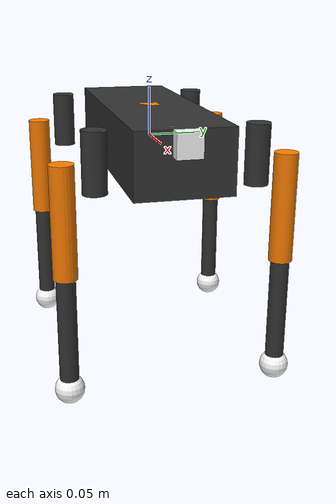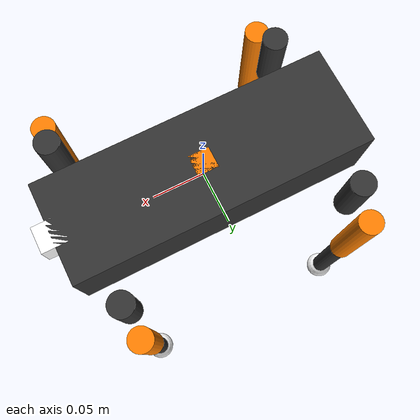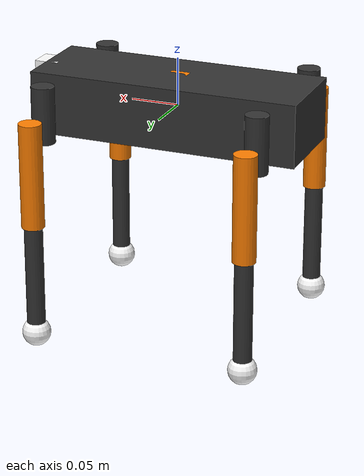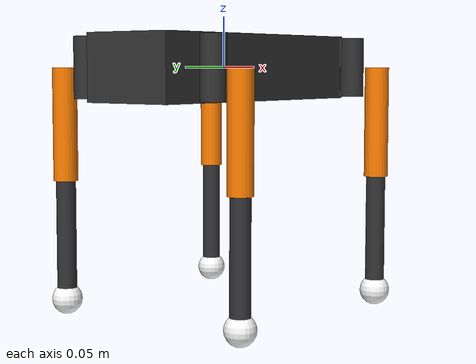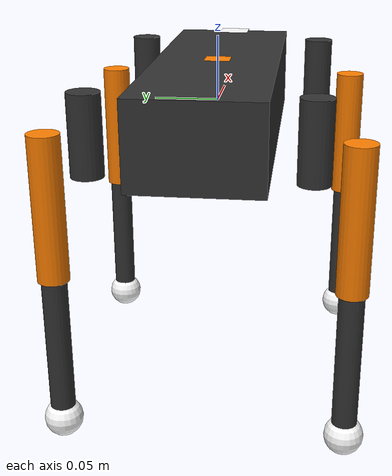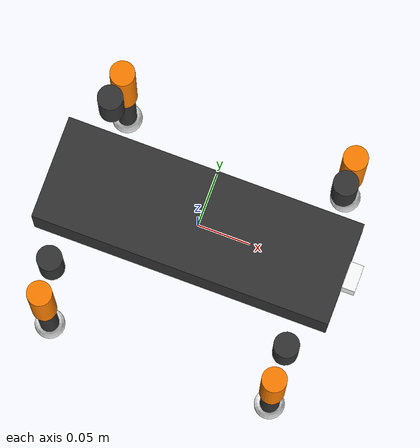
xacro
<?xml version="1.0"?>
<robot name="spotbot" xmlns:xacro="http://www.ros.org/wiki/xacro">

  <!-- ===== Proprietes ===== -->
  <xacro:property name="body_length"  value="0.285"/>
  <xacro:property name="body_width"   value="0.097"/>
  <xacro:property name="body_height"  value="0.065"/>
  <xacro:property name="leg_radius"   value="0.012"/>
  <xacro:property name="abad_length"  value="0.060"/>
  <xacro:property name="upper_length" value="0.111"/>
  <xacro:property name="lower_length" value="0.118"/>
  <xacro:property name="mass_body"    value="1.000"/>
  <xacro:property name="mass_leg"     value="0.100"/>

  <!-- ===== Materiaux ===== -->
  <material name="dark_grey"><color rgba="0.2 0.2 0.2 1"/></material>
  <material name="orange">   <color rgba="1.0 0.5 0.0 1"/></material>
  <material name="white">    <color rgba="1.0 1.0 1.0 1"/></material>

  <!-- ===== Corps principal ===== -->
  <link name="base_link">
    <visual>
      <geometry>
        <box size="${body_length} ${body_width} ${body_height}"/>
      </geometry>
      <material name="dark_grey"/>
    </visual>
    <collision>
      <geometry>
        <box size="${body_length} ${body_width} ${body_height}"/>
      </geometry>
    </collision>
    <inertial>
      <mass value="${mass_body}"/>
      <inertia ixx="0.005" ixy="0" ixz="0" iyy="0.010" iyz="0" izz="0.012"/>
    </inertial>
  </link>

  <!-- ===== IMU Link ===== -->
  <link name="imu_link">
    <visual>
      <geometry><box size="0.02 0.02 0.005"/></geometry>
      <material name="orange"/>
    </visual>
    <inertial>
      <mass value="0.005"/>
      <inertia ixx="1e-6" ixy="0" ixz="0" iyy="1e-6" iyz="0" izz="1e-6"/>
    </inertial>
  </link>
  <joint name="imu_joint" type="fixed">
    <parent link="base_link"/>
    <child link="imu_link"/>
    <origin xyz="0 0 0.03" rpy="0 0 0"/>
  </joint>

  <!-- ===== Camera Link ===== -->
  <link name="camera_link">
    <visual>
      <geometry><box size="0.025 0.025 0.025"/></geometry>
      <material name="white"/>
    </visual>
    <inertial>
      <mass value="0.010"/>
      <inertia ixx="1e-6" ixy="0" ixz="0" iyy="1e-6" iyz="0" izz="1e-6"/>
    </inertial>
  </link>
  <joint name="camera_joint" type="fixed">
    <parent link="base_link"/>
    <child link="camera_link"/>
    <origin xyz="${body_length/2} 0 0.02" rpy="0 0 0"/>
  </joint>

  <!-- ===== Macro pour une patte ===== -->
  <xacro:macro name="leg" params="prefix x_sign y_sign reflect">

    <!-- Abad link -->
    <link name="${prefix}_abad_link">
      <visual>
        <geometry><cylinder radius="${leg_radius}" length="${abad_length}"/></geometry>
        <material name="dark_grey"/>
      </visual>
      <collision>
        <geometry><cylinder radius="${leg_radius}" length="${abad_length}"/></geometry>
      </collision>
      <inertial>
        <mass value="${mass_leg}"/>
        <inertia ixx="1e-4" ixy="0" ixz="0" iyy="1e-4" iyz="0" izz="1e-5"/>
      </inertial>
    </link>

    <joint name="${prefix}_abad_joint" type="revolute">
      <parent link="base_link"/>
      <child link="${prefix}_abad_link"/>
      <origin xyz="${x_sign * body_length/2 * 0.8} ${y_sign * (body_width/2 + abad_length/2)} 0" rpy="0 0 0"/>
      <axis xyz="1 0 0"/>
      <limit lower="-0.7" upper="0.7" effort="10" velocity="5"/>
    </joint>

    <!-- Upper leg link -->
    <link name="${prefix}_upper_link">
      <visual>
        <origin xyz="0 0 ${-upper_length/2}"/>
        <geometry><cylinder radius="${leg_radius}" length="${upper_length}"/></geometry>
        <material name="orange"/>
      </visual>
      <collision>
        <origin xyz="0 0 ${-upper_length/2}"/>
        <geometry><cylinder radius="${leg_radius}" length="${upper_length}"/></geometry>
      </collision>
      <inertial>
        <mass value="${mass_leg}"/>
        <inertia ixx="1e-4" ixy="0" ixz="0" iyy="1e-4" iyz="0" izz="1e-5"/>
      </inertial>
    </link>

    <joint name="${prefix}_upper_joint" type="revolute">
      <parent link="${prefix}_abad_link"/>
      <child link="${prefix}_upper_link"/>
      <origin xyz="0 ${y_sign * abad_length/2} 0" rpy="0 0 0"/>
      <axis xyz="0 1 0"/>
      <limit lower="-1.5" upper="1.5" effort="10" velocity="5"/>
    </joint>

    <!-- Lower leg link -->
    <link name="${prefix}_lower_link">
      <visual>
        <origin xyz="0 0 ${-lower_length/2}"/>
        <geometry><cylinder radius="${leg_radius * 0.8}" length="${lower_length}"/></geometry>
        <material name="dark_grey"/>
      </visual>
      <collision>
        <origin xyz="0 0 ${-lower_length/2}"/>
        <geometry><cylinder radius="${leg_radius * 0.8}" length="${lower_length}"/></geometry>
      </collision>
      <inertial>
        <mass value="${mass_leg * 0.5}"/>
        <inertia ixx="5e-5" ixy="0" ixz="0" iyy="5e-5" iyz="0" izz="1e-6"/>
      </inertial>
    </link>

    <joint name="${prefix}_lower_joint" type="revolute">
      <parent link="${prefix}_upper_link"/>
      <child link="${prefix}_lower_link"/>
      <origin xyz="0 0 ${-upper_length}" rpy="0 0 0"/>
      <axis xyz="0 1 0"/>
      <limit lower="-2.5" upper="0.1" effort="10" velocity="5"/>
    </joint>

    <!-- Foot link -->
    <link name="${prefix}_foot_link">
      <visual>
        <geometry><sphere radius="0.015"/></geometry>
        <material name="white"/>
      </visual>
      <collision>
        <geometry><sphere radius="0.015"/></geometry>
      </collision>
      <inertial>
        <mass value="0.020"/>
        <inertia ixx="1e-6" ixy="0" ixz="0" iyy="1e-6" iyz="0" izz="1e-6"/>
      </inertial>
    </link>

    <joint name="${prefix}_foot_joint" type="fixed">
      <parent link="${prefix}_lower_link"/>
      <child link="${prefix}_foot_link"/>
      <origin xyz="0 0 ${-lower_length}"/>
    </joint>

  </xacro:macro>

  <!-- ===== Instanciation des 4 pattes ===== -->
  <xacro:leg prefix="fr" x_sign=" 1" y_sign="-1" reflect="1"/>
  <xacro:leg prefix="fl" x_sign=" 1" y_sign=" 1" reflect="-1"/>
  <xacro:leg prefix="br" x_sign="-1" y_sign="-1" reflect="1"/>
  <xacro:leg prefix="bl" x_sign="-1" y_sign=" 1" reflect="-1"/>

</robot>
